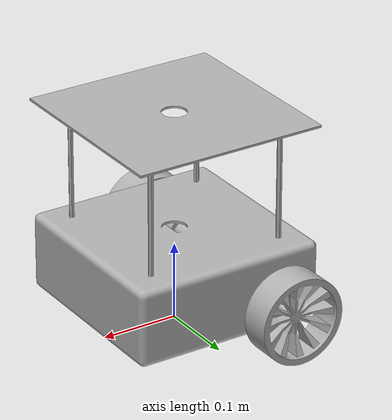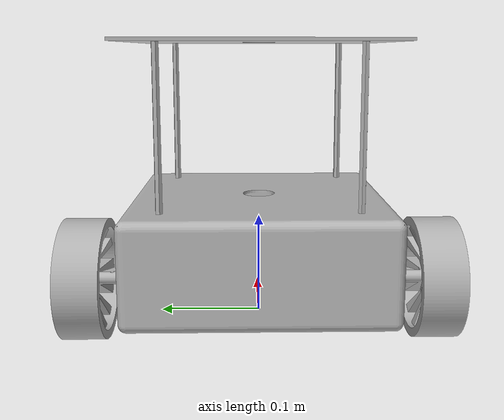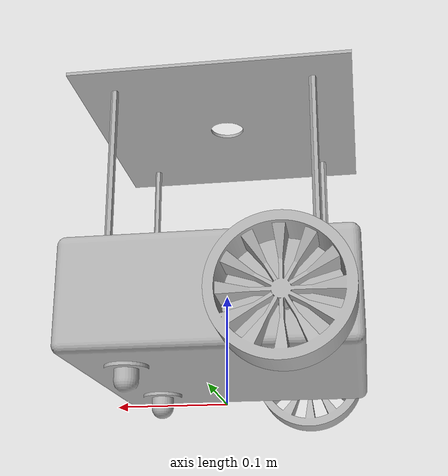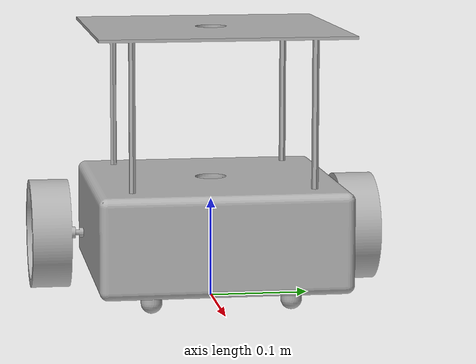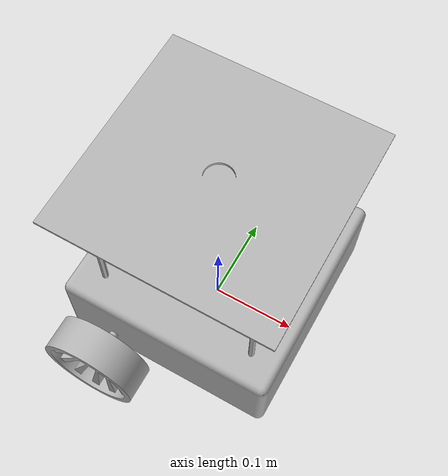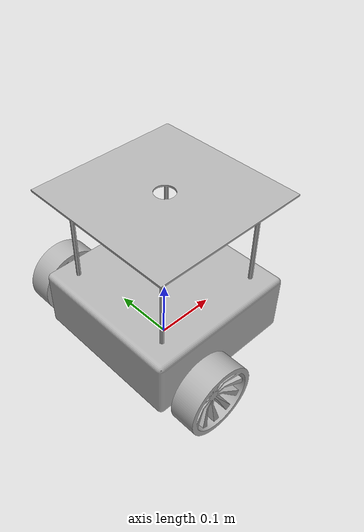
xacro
<?xml version="1.0" ?>
<robot name="controlbot_1" xmlns:xacro="http://www.ros.org/wiki/xacro">

<xacro:include filename="$(find controlbot_1_description)/urdf/materials.xacro" />
<xacro:include filename="$(find controlbot_1_description)/urdf/controlbot_1.trans" />
<xacro:include filename="$(find controlbot_1_description)/urdf/controlbot_1.gazebo" />
<xacro:include filename="$(find controlbot_1_description)/urdf/ros2_control.xacro" />
<!--link name = "base_footprint"/-->
<link name="base_link">
  <inertial>
    <origin xyz="-0.00025878921542171583 -1.2019562140504203e-05 0.1042321431647874" rpy="0 0 0"/>
    <mass value="1.1212507191009462"/>
    <inertia ixx="0.015867" iyy="0.015943" izz="0.014685" ixy="-9e-06" iyz="-2e-06" ixz="0.00016"/>
  </inertial>
  <visual>
    <origin xyz="0 0 0" rpy="0 0 0"/>
    <geometry>
      <mesh filename="file://$(find controlbot_1_description)/meshes/base_link.stl" scale="0.001 0.001 0.001"/>
    </geometry>
    <material name="silver"/>
  </visual>
  <collision>
    <origin xyz="0 0 0" rpy="0 0 0"/>
    <geometry>
      <mesh filename="file://$(find controlbot_1_description)/meshes/base_link.stl" scale="0.001 0.001 0.001"/>
    </geometry>
  </collision>
</link>

<link name="wheel_left_link_1">
  <inertial>
    <origin xyz="7.932439149982429e-10 0.0019140951985954502 -1.079961960581688e-06" rpy="0 0 0"/>
    <mass value="0.16918711951069407"/>
    <inertia ixx="0.000207" iyy="0.000378" izz="0.000207" ixy="0.0" iyz="-0.0" ixz="0.0"/>
  </inertial>
  <visual>
    <origin xyz="0.065 -0.1587 -0.056" rpy="0 0 0"/>
    <geometry>
      <mesh filename="file://$(find controlbot_1_description)/meshes/wheel_left_link_1.stl" scale="0.001 0.001 0.001"/>
    </geometry>
    <material name="silver"/>
  </visual>
  <collision>
    <origin xyz="0.065 -0.1587 -0.056" rpy="0 0 0"/>
    <geometry>
      <mesh filename="file://$(find controlbot_1_description)/meshes/wheel_left_link_1.stl" scale="0.001 0.001 0.001"/>
    </geometry>
  </collision>
</link>

<link name="wheel_right_link_1">
  <inertial>
    <origin xyz="7.932412227074082e-10 -0.0019137759272490618 1.062874243652756e-06" rpy="0 0 0"/>
    <mass value="0.16918711951069396"/>
    <inertia ixx="0.000207" iyy="0.000378" izz="0.000207" ixy="0.0" iyz="-0.0" ixz="-0.0"/>
  </inertial>
  <visual>
    <origin xyz="0.065 0.158689 -0.056" rpy="0 0 0"/>
    <geometry>
      <mesh filename="file://$(find controlbot_1_description)/meshes/wheel_right_link_1.stl" scale="0.001 0.001 0.001"/>
    </geometry>
    <material name="silver"/>
  </visual>
  <collision>
    <origin xyz="0.065 0.158689 -0.056" rpy="0 0 0"/>
    <geometry>
      <mesh filename="file://$(find controlbot_1_description)/meshes/wheel_right_link_1.stl" scale="0.001 0.001 0.001"/>
    </geometry>
  </collision>
</link>

<joint name="wheel_left_joint" type="continuous">
  <origin xyz="-0.065 0.1587 0.056" rpy="0 0 0"/>
  <parent link="base_link"/>
  <child link="wheel_left_link_1"/>
  <axis xyz="-0.0 1.0 0.0"/>
</joint>

<joint name="wheel_right_joint" type="continuous">
  <origin xyz="-0.065 -0.158689 0.056" rpy="0 0 0"/>
  <parent link="base_link"/>
  <child link="wheel_right_link_1"/>
  <axis xyz="-0.0 1.0 -0.0"/>
</joint>

</robot>

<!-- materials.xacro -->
<robot name="controlbot_1_imu" xmlns:xacro="http://www.ros.org/wiki/xacro" >

<material name="silver">
  <color rgba="0.700 0.700 0.700 1.000"/>
</material>

</robot>

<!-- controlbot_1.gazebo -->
<robot name="controlbot_1" xmlns:xacro="http://www.ros.org/wiki/xacro" >

<xacro:property name="body_color" value="Gazebo/Silver" />

<gazebo reference="base_link">
  <material>${body_color}</material>
  <mu1>.000000000001</mu1>
  <mu2>.000000000001</mu2>
  <self_collide>true</self_collide>
  <gravity>true</gravity>
</gazebo>

<gazebo reference="wheel_left_link_1">
  <material>${body_color}</material>
  <mu1>100000000.0</mu1>
  <mu2>100000000.0</mu2>
  <kp>1000000000000.0</kp>
  <kd>10.0</kd>
  <minDepth>0.001</minDepth>
  <maxVel>0.1</maxVel>
  <fdir1>1 0 0</fdir1>
  <self_collide>true</self_collide>
</gazebo>

<gazebo reference="wheel_right_link_1">
  <material>${body_color}</material>
  <mu1>100000000.0</mu1>
  <mu2>100000000.0</mu2>
  <kp>1000000000000.0</kp>
  <kd>10.0</kd>
  <minDepth>0.001</minDepth>
  <maxVel>0.1</maxVel>
  <fdir1>1 0 0</fdir1>
  <self_collide>true</self_collide>
</gazebo>

<gazebo>
  <plugin filename="libgazebo_ros2_control.so" name="gazebo_ros2_control">
    <parameters>$(find controlbot_controllers)/config/controlbot_controller.yaml</parameters>
  </plugin>
</gazebo>
</robot>
